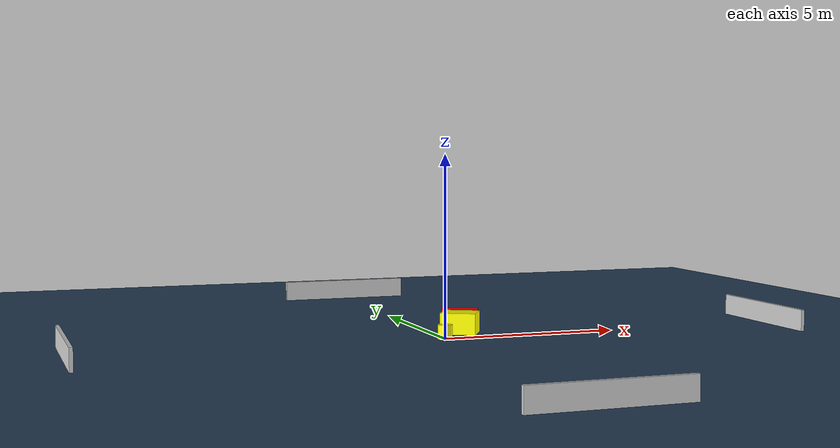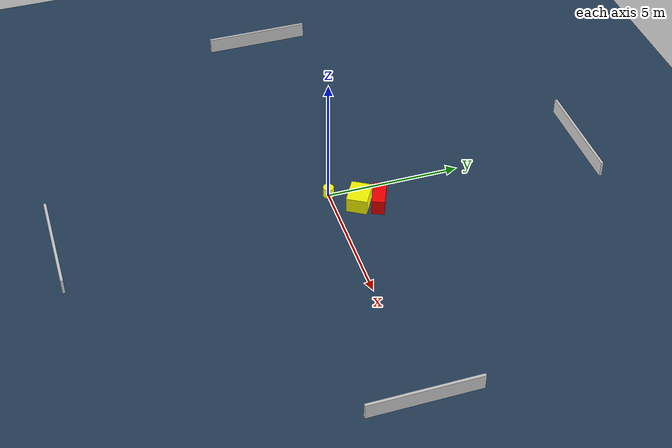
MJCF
<?xml version="1.0" ?>
<mujoco model="generated_environment">
  <option timestep="0.01" integrator="RK4" cone="elliptic"/>
  <default>
    <geom density="1"/>
  </default>
  <asset>
    <texture builtin="gradient" height="3072" name="skybox" rgb1="0.3 0.5 0.7" rgb2="0 0 0" type="skybox" width="512"/>
    <texture builtin="checker" height="300" name="groundplane" rgb1="0.2 0.3 0.4" rgb2="0.1 0.2 0.3" type="2d" width="300"/>
    <material name="groundplane" reflectance="0.2" texrepeat="5 5" texture="groundplane"/>
  </asset>
  <worldbody>
    <light dir="0 0 -1" directional="true" pos="0 0 1.5"/>
    <geom condim="3" friction="0.5 0.005 0.001" material="groundplane" name="floor" pos="0 0 0" size="0 0 0.05" type="plane"/>
    <body name="walls">
      <geom name="wall_1" condim="4" pos="-10.0 0.0 0.3" rgba="0.800000011920929 0.800000011920929 0.800000011920929 1.0" size="0.05 2.0 0.3" type="box"/>
      <geom name="wall_2" condim="4" pos="10.0 0.0 0.3" rgba="0.800000011920929 0.800000011920929 0.800000011920929 1.0" size="0.05 2.0 0.3" type="box"/>
      <geom name="wall_3" condim="4" pos="0.0 -10.0 0.3" rgba="0.800000011920929 0.800000011920929 0.800000011920929 1.0" size="2.0 0.05 0.3" type="box"/>
      <geom name="wall_4" condim="4" pos="0.0 10.0 0.3" rgba="0.800000011920929 0.800000011920929 0.800000011920929 1.0" size="2.0 0.05 0.3" type="box"/>
    </body>
    <body name="robot">
      <joint name="joint_x" type="slide" pos="0 0 0" axis="1 0 0"/>
      <joint name="joint_y" type="slide" pos="0 0 0" axis="0 1 0"/>
      <geom name="robot" type="cylinder" pos="0.0 0.0 0.2" size="0.2 0.2 0.0" mass="5.0" friction="1.0 0.005 0.0001" condim="4" rgba="1.0 1.0 0.0 1.0"/>
    </body>
    <body name="obstacle_1_movable">
      <geom name="obstacle_1_movable" condim="4" pos="0.7742895167748601 0.9257656111864814 0.3" euler="0 0 239.61358426158966" friction="0.0 0.005 0.001" rgba="1.0 1.0 0.0 1.0" size="0.384712945469982 0.4931021632852111 0.3" type="box" mass="0.1"/>
      <joint type="free"/>
    </body>
    <body name="obstacle_2_static">
      <geom name="obstacle_2_static" condim="4" pos="1.0242436333002003 1.5980236735560382 0.3" euler="0 0 246.6484281240435" friction="0.0 0.005 0.001" rgba="1.0 0.0 0.0 1.0" size="0.2387845446487898 0.5131711588687384 0.3" type="box"/>
    </body>
  </worldbody>
  <actuator>
    <motor name="actuator_x" joint="joint_x" gear="1" ctrlrange="-1 1"/>
    <motor name="actuator_y" joint="joint_y" gear="1" ctrlrange="-1 1"/>
  </actuator>
</mujoco>
